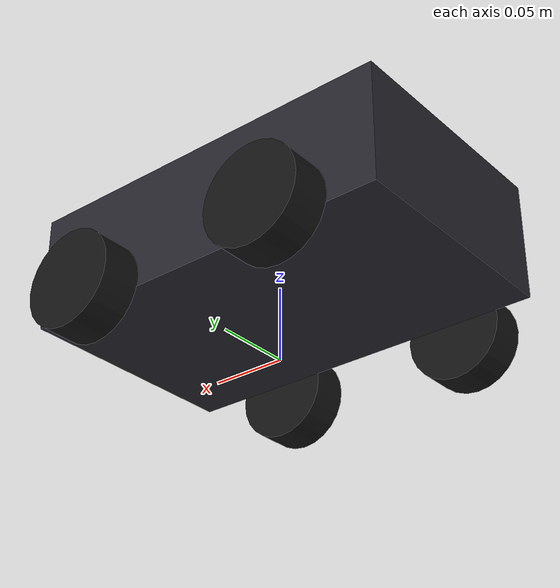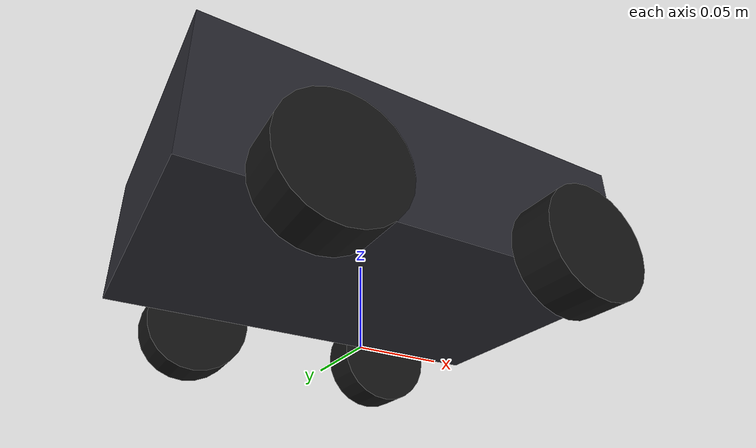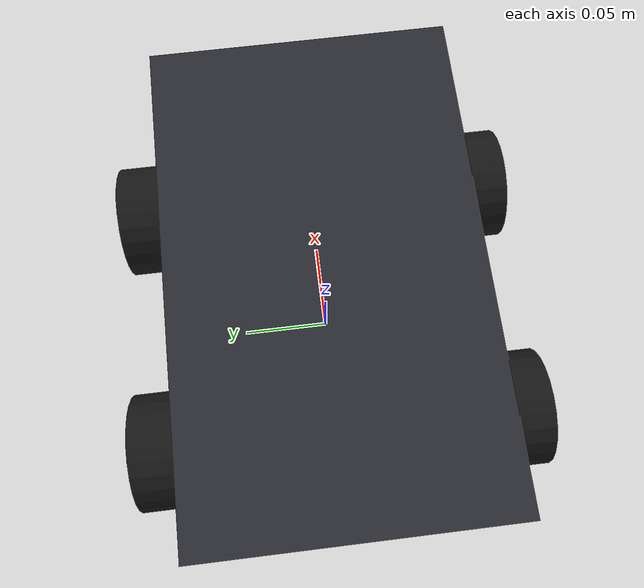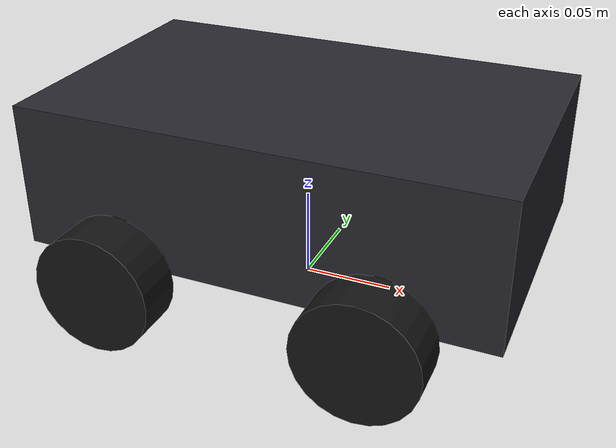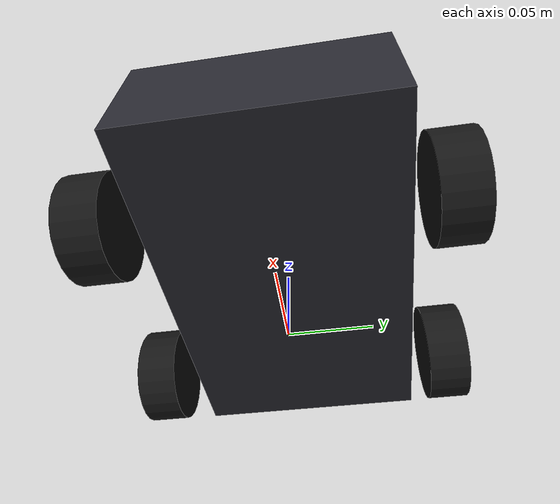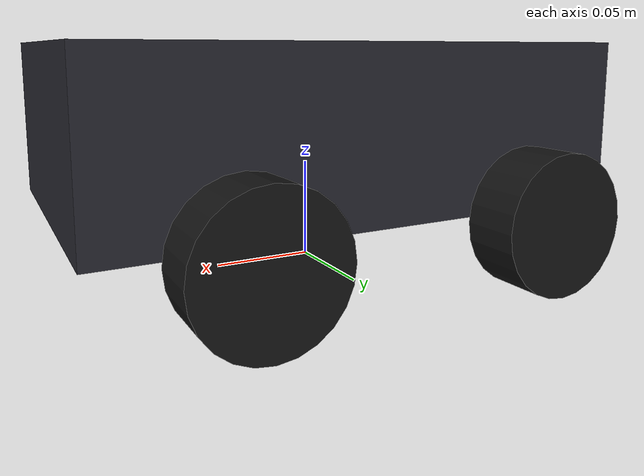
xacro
<?xml version="1.0"?>
<robot xmlns:xacro="http://www.ros.org/wiki/xacro">

    <xacro:include filename="inertial_macros.xacro" />

    <!-- Dimensional Properties -->
    <xacro:property name="chassis_length" value="0.260" />
    <xacro:property name="chassis_width" value="0.160" />
    <xacro:property name="chassis_height" value="0.080" />
    <xacro:property name="chassis_mass" value="1.20" />

    <xacro:property name="wheel_radius" value="0.0325" />
    <xacro:property name="wheel_thickness" value="0.026" />
    <xacro:property name="wheel_mass" value="0.08" />
    <xacro:property name="wheel_track" value="0.200" />
    <xacro:property name="wheel_base" value="0.140" />

    <!-- Colors -->
    <material name="chassis_color">
        <color rgba="0.15 0.15 0.18 1.0" />
    </material>
    <material name="accent_blue">
        <color rgba="0.12 0.53 0.90 1.0" />
    </material>
    <material name="wheel_black">
        <color rgba="0.08 0.08 0.08 1.0" />
    </material>
    <material name="sensor_grey">
        <color rgba="0.30 0.30 0.30 1.0" />
    </material>
    <material name="lens_glass">
        <color rgba="0.0 0.8 0.8 0.8" />
    </material>

    <!-- BASE FOOTPRINT (Ground projection) -->
    <link name="base_footprint" />

    <!-- BASE LINK (Center of the wheel axles) -->
    <joint name="base_joint" type="fixed">
        <parent link="base_footprint" />
        <child link="base_link" />
        <origin xyz="0 0 ${wheel_radius}" rpy="0 0 0" />
    </joint>

    <link name="base_link" />

    <!-- CHASSIS LINK -->
    <joint name="chassis_joint" type="fixed">
        <parent link="base_link" />
        <child link="chassis" />
        <origin xyz="0 0 ${chassis_height/2}" rpy="0 0 0" />
    </joint>

    <link name="chassis">
        <visual>
            <geometry>
                <box size="${chassis_length} ${chassis_width} ${chassis_height}" />
            </geometry>
            <material name="chassis_color" />
        </visual>
        <collision>
            <geometry>
                <box size="${chassis_length} ${chassis_width} ${chassis_height}" />
            </geometry>
        </collision>
        <xacro:inertial_box mass="${chassis_mass}" x="${chassis_length}" y="${chassis_width}" z="${chassis_height}">
            <origin xyz="0 0 0" rpy="0 0 0" />
        </xacro:inertial_box>
    </link>

    <gazebo reference="chassis">
        <material>Gazebo/DarkGrey</material>
    </gazebo>

    <!-- WHEEL MACRO -->
    <xacro:macro name="wheel" params="prefix x_reflect y_reflect">
        <joint name="${prefix}_wheel_joint" type="continuous">
            <parent link="base_link" />
            <child link="${prefix}_wheel" />
            <origin xyz="${x_reflect * wheel_base/2} ${y_reflect * wheel_track/2} 0" rpy="-${pi/2} 0 0" />
            <axis xyz="0 0 1" />
        </joint>

        <link name="${prefix}_wheel">
            <visual>
                <geometry>
                    <cylinder radius="${wheel_radius}" length="${wheel_thickness}" />
                </geometry>
                <material name="wheel_black" />
            </visual>
            <collision>
                <geometry>
                    <cylinder radius="${wheel_radius}" length="${wheel_thickness}" />
                </geometry>
            </collision>
            <xacro:inertial_cylinder mass="${wheel_mass}" length="${wheel_thickness}" radius="${wheel_radius}">
                <origin xyz="0 0 0" rpy="0 0 0" />
            </xacro:inertial_cylinder>
        </link>

        <gazebo reference="${prefix}_wheel">
            <material>Gazebo/Black</material>
            <mu1 value="1.0" />
            <mu2 value="1.0" />
            <kp value="10000000.0" />
            <kd value="1.0" />
            <minDepth>0.001</minDepth>
        </gazebo>
    </xacro:macro>

    <!-- 4 WHEELS (Front & Rear, Left & Right) -->
    <xacro:wheel prefix="front_left"  x_reflect="1"  y_reflect="1"  />
    <xacro:wheel prefix="front_right" x_reflect="1"  y_reflect="-1" />
    <xacro:wheel prefix="back_left"   x_reflect="-1" y_reflect="1"  />
    <xacro:wheel prefix="back_right"  x_reflect="-1" y_reflect="-1" />

</robot>

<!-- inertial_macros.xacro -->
<robot xmlns:xacro="http://www.ros.org/wiki/xacro">

    <!-- Box inertia macro -->
    <xacro:macro name="inertial_box" params="mass x y z *origin">
        <inertial>
            <xacro:insert_block name="origin"/>
            <mass value="${mass}" />
            <inertia ixx="${(1/12) * mass * (y*y + z*z)}" ixy="0.0" ixz="0.0"
                     iyy="${(1/12) * mass * (x*x + z*z)}" iyz="0.0"
                     izz="${(1/12) * mass * (x*x + y*y)}" />
        </inertial>
    </xacro:macro>

    <!-- Cylinder inertia macro (along Z-axis) -->
    <xacro:macro name="inertial_cylinder" params="mass length radius *origin">
        <inertial>
            <xacro:insert_block name="origin"/>
            <mass value="${mass}" />
            <inertia ixx="${(1/12) * mass * (3*radius*radius + length*length)}" ixy="0.0" ixz="0.0"
                     iyy="${(1/12) * mass * (3*radius*radius + length*length)}" iyz="0.0"
                     izz="${(1/2) * mass * (radius*radius)}" />
        </inertial>
    </xacro:macro>

    <!-- Sphere inertia macro -->
    <xacro:macro name="inertial_sphere" params="mass radius *origin">
        <inertial>
            <xacro:insert_block name="origin"/>
            <mass value="${mass}" />
            <inertia ixx="${(2/5) * mass * radius * radius}" ixy="0.0" ixz="0.0"
                     iyy="${(2/5) * mass * radius * radius}" iyz="0.0"
                     izz="${(2/5) * mass * radius * radius}" />
        </inertial>
    </xacro:macro>

</robot>
